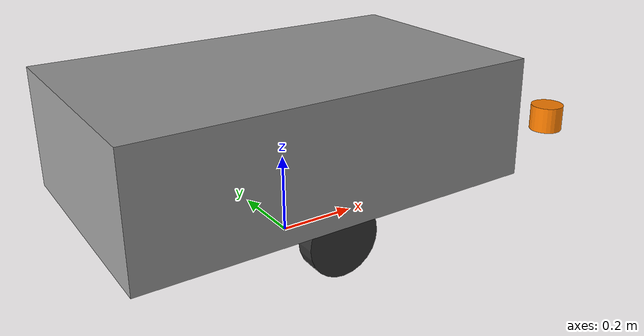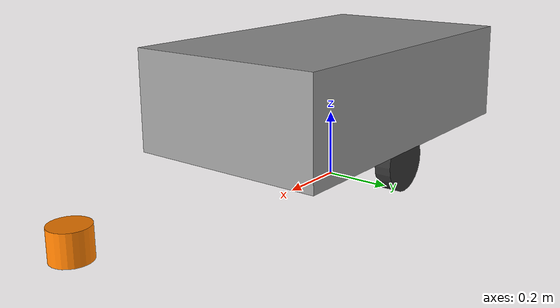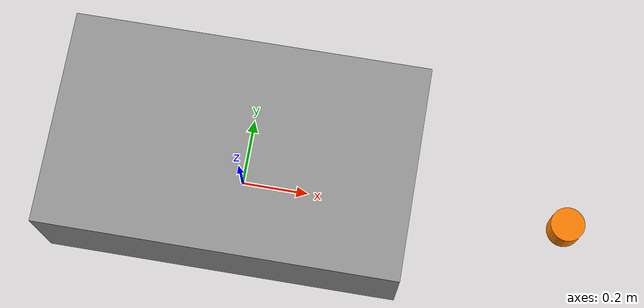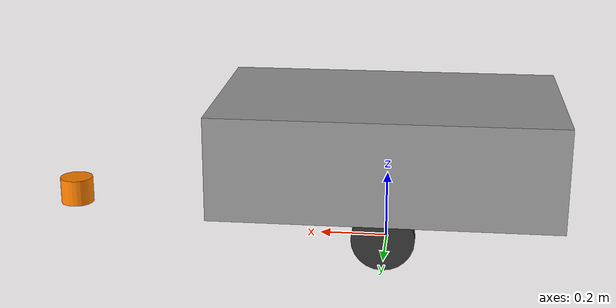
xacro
<?xml version="1.0"?>
<robot xmlns:xacro="http://www.ros.org/wiki/xacro" name="amr">

  <!-- Measured, from profiles/agv-01.json (reconciliation §1) -->
  <xacro:arg name="wheel_radius" default="0.09"/>   <!-- wheel_dia_m 0.18 / 2 -->
  <xacro:arg name="track_width"  default="0.487"/>  <!-- measured 2026-09-15; profile track_m says 0.486 -->
  <xacro:arg name="wheel_width"  default="0.05"/>   <!-- MEASURE, visual only -->

  <xacro:arg name="rear_lidar"     default="false"/>
  <xacro:arg name="rear_laser_x"   default="-0.40"/> <!-- MEASURE -->
  <xacro:arg name="rear_laser_y"   default="0.00"/>  <!-- MEASURE -->
  <xacro:arg name="rear_laser_z"   default="0.02"/>  <!-- MEASURE -->
  <xacro:arg name="rear_laser_yaw" default="3.14159"/> <!-- MEASURE -->

  <!-- Chassis box, centred on base_link in y; x offset lets the axle sit off-centre -->
  <xacro:arg name="chassis_length" default="1.00"/> <!-- MEASURE -->
  <xacro:arg name="chassis_width"  default="0.60"/> <!-- MEASURE -->
  <xacro:arg name="chassis_height" default="0.30"/> <!-- MEASURE -->
  <xacro:arg name="chassis_x"      default="0.00"/> <!-- MEASURE: chassis centre ahead of axle -->
  <xacro:arg name="chassis_z"      default="0.05"/> <!-- MEASURE: chassis underside above axle -->

  <xacro:arg name="laser_x"   default="0.964"/>
  <xacro:arg name="laser_y"   default="0.00"/>  <!-- verified on centreline 2026-09-16 -->
  <xacro:arg name="laser_z"   default="0.020"/>
  <xacro:arg name="laser_yaw" default="0.0"/>   <!-- verified 2026-09-16, rad -->

  <xacro:arg name="imu_x" default="0.092"/>
  <xacro:arg name="imu_y" default="0.0"/>    <!-- VERIFY -->
  <xacro:arg name="imu_z" default="0.0"/>    <!-- VERIFY -->

  <xacro:property name="wheel_radius" value="$(arg wheel_radius)"/>
  <xacro:property name="track_width"  value="$(arg track_width)"/>
  <xacro:property name="wheel_width"  value="$(arg wheel_width)"/>

  <material name="grey"><color rgba="0.6 0.6 0.6 1"/></material>
  <material name="dark"><color rgba="0.2 0.2 0.2 1"/></material>
  <material name="orange"><color rgba="1.0 0.5 0.0 1"/></material>

  <!-- base_footprint: z = 0 projection, parent of base_link (spec §2.3) -->
  <link name="base_footprint"/>

  <joint name="base_footprint_joint" type="fixed">
    <parent link="base_footprint"/>
    <child link="base_link"/>
    <origin xyz="0 0 ${wheel_radius}" rpy="0 0 0"/>
  </joint>

  <link name="base_link">
    <visual>
      <origin xyz="$(arg chassis_x) 0 ${$(arg chassis_z) + $(arg chassis_height) / 2}" rpy="0 0 0"/>
      <geometry>
        <box size="$(arg chassis_length) $(arg chassis_width) $(arg chassis_height)"/>
      </geometry>
      <material name="grey"/>
    </visual>
  </link>

  <!-- Wheels: fixed joints, visualisation only (architecture §5). No joint_states needed. -->
  <xacro:macro name="wheel" params="side y">
    <link name="wheel_${side}">
      <visual>
        <origin xyz="0 0 0" rpy="${pi/2} 0 0"/>
        <geometry>
          <cylinder radius="${wheel_radius}" length="${wheel_width}"/>
        </geometry>
        <material name="dark"/>
      </visual>
    </link>
    <joint name="wheel_${side}_joint" type="fixed">
      <parent link="base_link"/>
      <child link="wheel_${side}"/>
      <origin xyz="0 ${y} 0" rpy="0 0 0"/>
    </joint>
  </xacro:macro>
  <xacro:wheel side="left"  y="${ track_width / 2}"/>
  <xacro:wheel side="right" y="${-track_width / 2}"/>

  <!-- nanoScan3 -->
  <link name="laser_frame">
    <visual>
      <origin xyz="0 0 0" rpy="0 0 0"/>
      <geometry>
        <cylinder radius="0.05" length="0.08"/>
      </geometry>
      <material name="orange"/>
    </visual>
  </link>
  <joint name="laser_joint" type="fixed">
    <parent link="base_link"/>
    <child link="laser_frame"/>
    <origin xyz="$(arg laser_x) $(arg laser_y) $(arg laser_z)" rpy="0 0 $(arg laser_yaw)"/>
  </joint>

  <!-- The rear nanoScan3 (station call plan P4): only with rear_lidar:=true. Yaw pi: its x looks
       back. All MEASURE until fitted (plan P8). Nothing but trolley_node uses this frame. -->
  <xacro:if value="$(arg rear_lidar)">
    <link name="rear_laser_frame"/>
    <joint name="rear_laser_joint" type="fixed">
      <parent link="base_link"/>
      <child link="rear_laser_frame"/>
      <origin xyz="$(arg rear_laser_x) $(arg rear_laser_y) $(arg rear_laser_z)" rpy="0 0 $(arg rear_laser_yaw)"/>
    </joint>
  </xacro:if>

  <!-- IMU in the MLS -->
  <link name="imu_frame"/>
  <joint name="imu_joint" type="fixed">
    <parent link="base_link"/>
    <child link="imu_frame"/>
    <origin xyz="$(arg imu_x) $(arg imu_y) $(arg imu_z)" rpy="0 0 0"/>
  </joint>

  <!-- floor_cam_frame (spec §2.3) is deliberately absent: no camera on this vehicle (D-4). -->

</robot>
